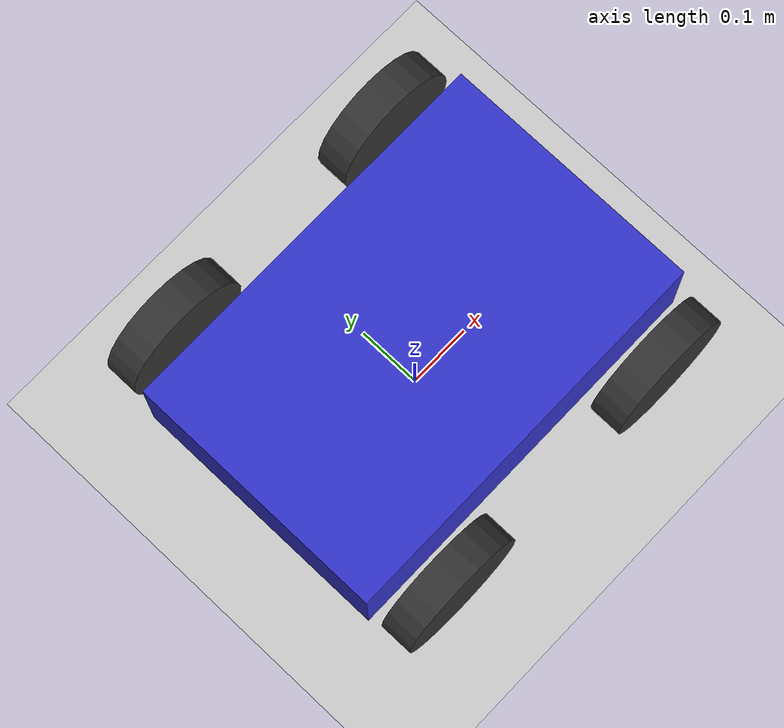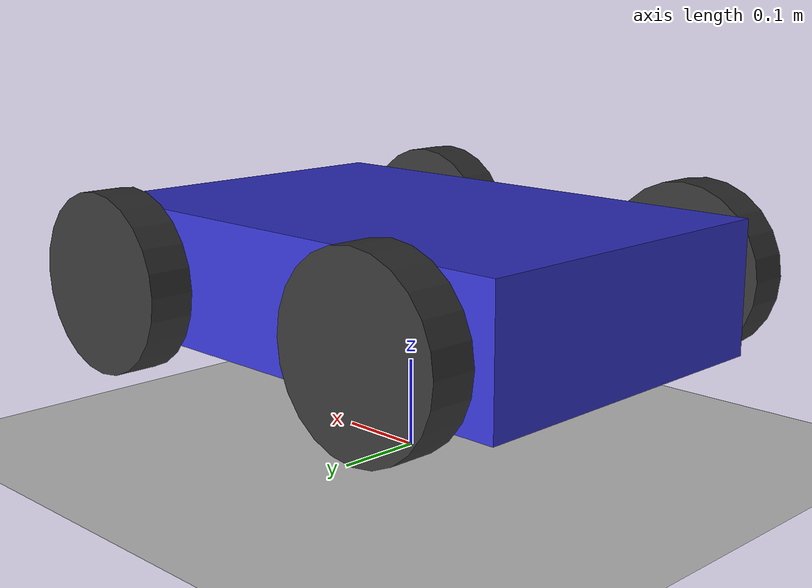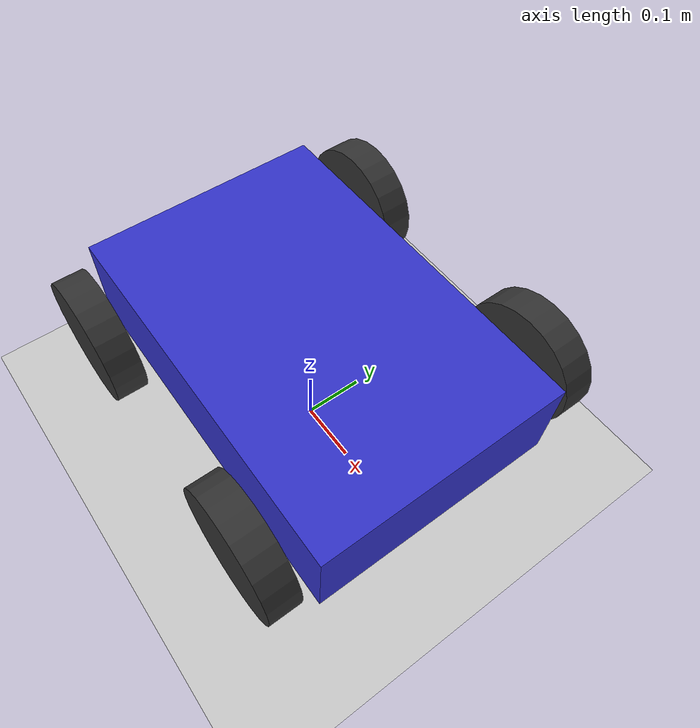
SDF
<?xml version="1.0" ?>
<sdf version="1.6">
  <world name="flat_rover">

    <!-- Physics settings for ArduPilot synchronization -->
    <physics type="ode">
      <ode>
        <solver>
          <type>quick</type>
          <iters>100</iters>
          <sor>1.0</sor>
        </solver>
        <constraints>
          <cfm>0.0</cfm>
          <erp>0.9</erp>
          <contact_max_correcting_vel>0.1</contact_max_correcting_vel>
          <contact_surface_layer>0.0</contact_surface_layer>
        </constraints>
      </ode>
      <real_time_update_rate>0</real_time_update_rate>
      <max_step_size>0.0025</max_step_size>
    </physics>

    <!-- Sun -->
    <include>
      <uri>model://sun</uri>
    </include>

    <!-- Ground plane -->
    <include>
      <uri>model://ground_plane</uri>
    </include>

    <!-- Spawn simple rover -->
    <include>
      <uri>model://simple_rover</uri>
      <pose>0 0 0.2 0 0 0</pose>
    </include>

  </world>
</sdf>

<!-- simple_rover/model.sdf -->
<sdf version='1.6'>
  <model name="simple_rover">
    <pose>0 0 0.2 0 0 0</pose>

    <!-- Main Chassis -->
    <link name="base_link">
      <inertial>
        <mass>10.0</mass>
        <inertia>
          <ixx>0.5</ixx>
          <ixy>0</ixy>
          <ixz>0</ixz>
          <iyy>0.8</iyy>
          <iyz>0</iyz>
          <izz>0.5</izz>
        </inertia>
      </inertial>
      <collision name="chassis_collision">
        <geometry>
          <box>
            <size>0.6 0.4 0.15</size>
          </box>
        </geometry>
      </collision>
      <visual name="chassis_visual">
        <geometry>
          <box>
            <size>0.6 0.4 0.15</size>
          </box>
        </geometry>
        <material>
          <ambient>0.2 0.2 0.6 1</ambient>
          <diffuse>0.2 0.2 0.8 1</diffuse>
        </material>
      </visual>
    </link>

    <!-- IMU Sensor -->
    <link name="imu_link">
      <pose>0 0 0.1 0 0 0</pose>
      <inertial>
        <mass>0.01</mass>
        <inertia>
          <ixx>1e-6</ixx>
          <ixy>0</ixy>
          <ixz>0</ixz>
          <iyy>1e-6</iyy>
          <iyz>0</iyz>
          <izz>1e-6</izz>
        </inertia>
      </inertial>
      <sensor name="imu_sensor" type="imu">
        <pose>0 0 0 3.141593 0 0</pose>
        <always_on>1</always_on>
        <update_rate>100.0</update_rate>
      </sensor>
    </link>
    <joint name="imu_joint" type="fixed">
      <parent>base_link</parent>
      <child>imu_link</child>
    </joint>

    <!-- Front Left Wheel -->
    <link name="front_left_wheel">
      <pose>0.2 0.25 0 1.5708 0 0</pose>
      <inertial>
        <mass>0.5</mass>
        <inertia>
          <ixx>0.005</ixx>
          <ixy>0</ixy>
          <ixz>0</ixz>
          <iyy>0.005</iyy>
          <iyz>0</iyz>
          <izz>0.008</izz>
        </inertia>
      </inertial>
      <collision name="collision">
        <geometry>
          <cylinder>
            <radius>0.1</radius>
            <length>0.05</length>
          </cylinder>
        </geometry>
        <surface>
          <friction>
            <ode>
              <mu>1.0</mu>
              <mu2>1.0</mu2>
            </ode>
          </friction>
        </surface>
      </collision>
      <visual name="visual">
        <geometry>
          <cylinder>
            <radius>0.1</radius>
            <length>0.05</length>
          </cylinder>
        </geometry>
        <material>
          <ambient>0.1 0.1 0.1 1</ambient>
          <diffuse>0.2 0.2 0.2 1</diffuse>
        </material>
      </visual>
    </link>
    <joint name="front_left_joint" type="revolute">
      <parent>base_link</parent>
      <child>front_left_wheel</child>
      <axis>
        <xyz>0 0 1</xyz>
      </axis>
    </joint>

    <!-- Front Right Wheel -->
    <link name="front_right_wheel">
      <pose>0.2 -0.25 0 1.5708 0 0</pose>
      <inertial>
        <mass>0.5</mass>
        <inertia>
          <ixx>0.005</ixx>
          <ixy>0</ixy>
          <ixz>0</ixz>
          <iyy>0.005</iyy>
          <iyz>0</iyz>
          <izz>0.008</izz>
        </inertia>
      </inertial>
      <collision name="collision">
        <geometry>
          <cylinder>
            <radius>0.1</radius>
            <length>0.05</length>
          </cylinder>
        </geometry>
        <surface>
          <friction>
            <ode>
              <mu>1.0</mu>
              <mu2>1.0</mu2>
            </ode>
          </friction>
        </surface>
      </collision>
      <visual name="visual">
        <geometry>
          <cylinder>
            <radius>0.1</radius>
            <length>0.05</length>
          </cylinder>
        </geometry>
        <material>
          <ambient>0.1 0.1 0.1 1</ambient>
          <diffuse>0.2 0.2 0.2 1</diffuse>
        </material>
      </visual>
    </link>
    <joint name="front_right_joint" type="revolute">
      <parent>base_link</parent>
      <child>front_right_wheel</child>
      <axis>
        <xyz>0 0 1</xyz>
      </axis>
    </joint>

    <!-- Back Left Wheel -->
    <link name="back_left_wheel">
      <pose>-0.2 0.25 0 1.5708 0 0</pose>
      <inertial>
        <mass>0.5</mass>
        <inertia>
          <ixx>0.005</ixx>
          <ixy>0</ixy>
          <ixz>0</ixz>
          <iyy>0.005</iyy>
          <iyz>0</iyz>
          <izz>0.008</izz>
        </inertia>
      </inertial>
      <collision name="collision">
        <geometry>
          <cylinder>
            <radius>0.1</radius>
            <length>0.05</length>
          </cylinder>
        </geometry>
        <surface>
          <friction>
            <ode>
              <mu>1.0</mu>
              <mu2>1.0</mu2>
            </ode>
          </friction>
        </surface>
      </collision>
      <visual name="visual">
        <geometry>
          <cylinder>
            <radius>0.1</radius>
            <length>0.05</length>
          </cylinder>
        </geometry>
        <material>
          <ambient>0.1 0.1 0.1 1</ambient>
          <diffuse>0.2 0.2 0.2 1</diffuse>
        </material>
      </visual>
    </link>
    <joint name="back_left_joint" type="revolute">
      <parent>base_link</parent>
      <child>back_left_wheel</child>
      <axis>
        <xyz>0 0 1</xyz>
      </axis>
    </joint>

    <!-- Back Right Wheel -->
    <link name="back_right_wheel">
      <pose>-0.2 -0.25 0 1.5708 0 0</pose>
      <inertial>
        <mass>0.5</mass>
        <inertia>
          <ixx>0.005</ixx>
          <ixy>0</ixy>
          <ixz>0</ixz>
          <iyy>0.005</iyy>
          <iyz>0</iyz>
          <izz>0.008</izz>
        </inertia>
      </inertial>
      <collision name="collision">
        <geometry>
          <cylinder>
            <radius>0.1</radius>
            <length>0.05</length>
          </cylinder>
        </geometry>
        <surface>
          <friction>
            <ode>
              <mu>1.0</mu>
              <mu2>1.0</mu2>
            </ode>
          </friction>
        </surface>
      </collision>
      <visual name="visual">
        <geometry>
          <cylinder>
            <radius>0.1</radius>
            <length>0.05</length>
          </cylinder>
        </geometry>
        <material>
          <ambient>0.1 0.1 0.1 1</ambient>
          <diffuse>0.2 0.2 0.2 1</diffuse>
        </material>
      </visual>
    </link>
    <joint name="back_right_joint" type="revolute">
      <parent>base_link</parent>
      <child>back_right_wheel</child>
      <axis>
        <xyz>0 0 1</xyz>
      </axis>
    </joint>

    <!-- ArduPilot Plugin -->
    <plugin name="ardupilot_plugin" filename="libArduPilotPlugin.so">
      <fdm_addr>127.0.0.1</fdm_addr>
      <fdm_port_in>9002</fdm_port_in>
      <fdm_port_out>9003</fdm_port_out>
      <modelXYZToAirplaneXForwardZDown>0 0 0 3.141593 0 0</modelXYZToAirplaneXForwardZDown>
      <gazeboXYZToNED>0 0 0 3.141593 0 0</gazeboXYZToNED>
      <imuName>simple_rover::imu_link::imu_sensor</imuName>
      <connectionTimeoutMaxCount>50</connectionTimeoutMaxCount>

      <!-- Left wheels (channel 0) -->
      <control channel="0">
        <type>VELOCITY</type>
        <offset>-0.5</offset>
        <p_gain>1</p_gain>
        <i_gain>0</i_gain>
        <d_gain>0</d_gain>
        <i_max>0</i_max>
        <i_min>0</i_min>
        <cmd_max>10</cmd_max>
        <cmd_min>-10</cmd_min>
        <jointName>front_left_joint</jointName>
        <multiplier>10</multiplier>
      </control>
      <control channel="0">
        <type>VELOCITY</type>
        <offset>-0.5</offset>
        <p_gain>1</p_gain>
        <i_gain>0</i_gain>
        <d_gain>0</d_gain>
        <i_max>0</i_max>
        <i_min>0</i_min>
        <cmd_max>10</cmd_max>
        <cmd_min>-10</cmd_min>
        <jointName>back_left_joint</jointName>
        <multiplier>10</multiplier>
      </control>

      <!-- Right wheels (channel 2) -->
      <control channel="2">
        <type>VELOCITY</type>
        <offset>-0.5</offset>
        <p_gain>1</p_gain>
        <i_gain>0</i_gain>
        <d_gain>0</d_gain>
        <i_max>0</i_max>
        <i_min>0</i_min>
        <cmd_max>10</cmd_max>
        <cmd_min>-10</cmd_min>
        <jointName>front_right_joint</jointName>
        <multiplier>10</multiplier>
      </control>
      <control channel="2">
        <type>VELOCITY</type>
        <offset>-0.5</offset>
        <p_gain>1</p_gain>
        <i_gain>0</i_gain>
        <d_gain>0</d_gain>
        <i_max>0</i_max>
        <i_min>0</i_min>
        <cmd_max>10</cmd_max>
        <cmd_min>-10</cmd_min>
        <jointName>back_right_joint</jointName>
        <multiplier>10</multiplier>
      </control>
    </plugin>

  </model>
</sdf>
